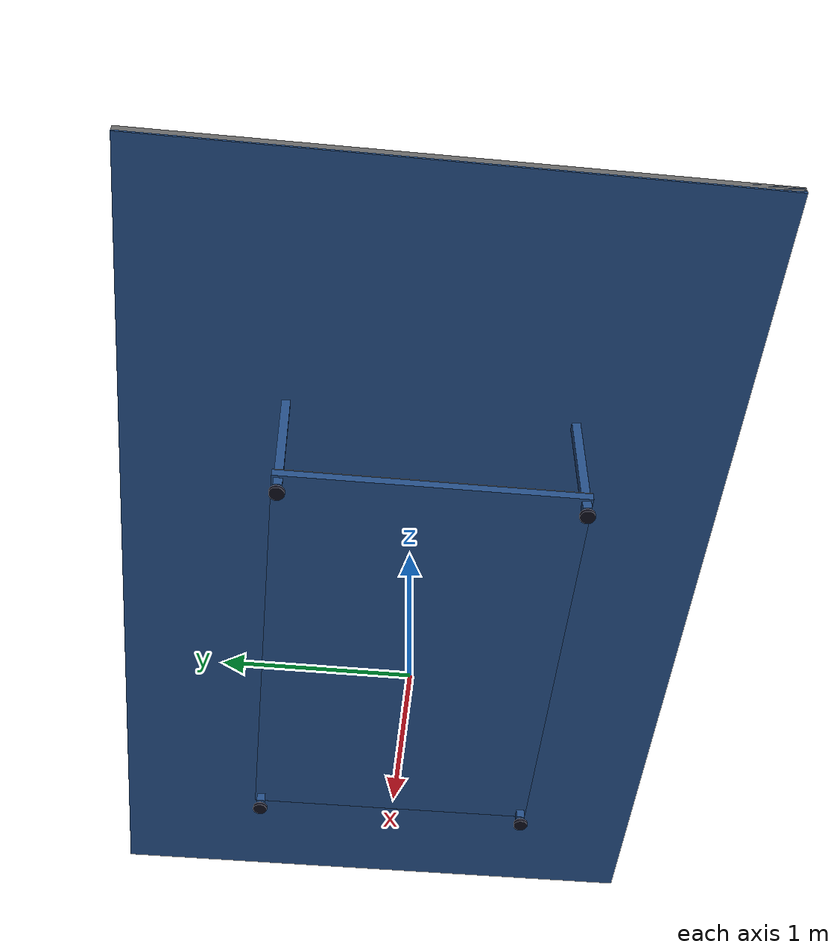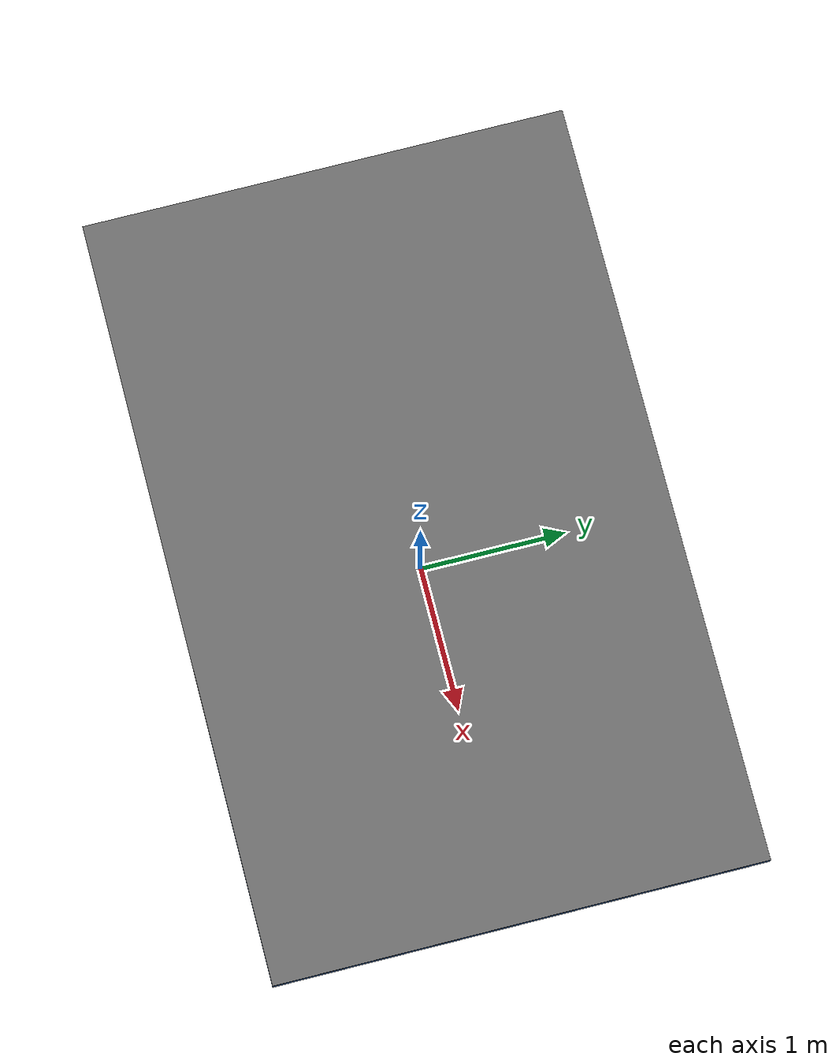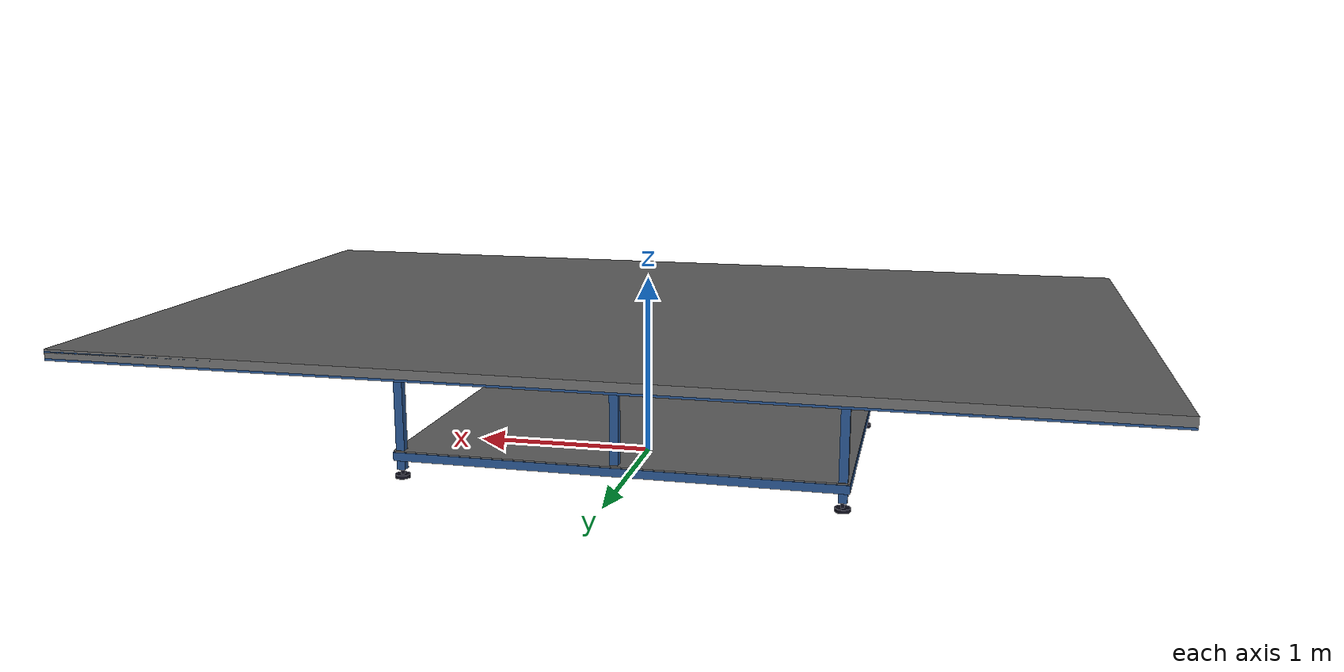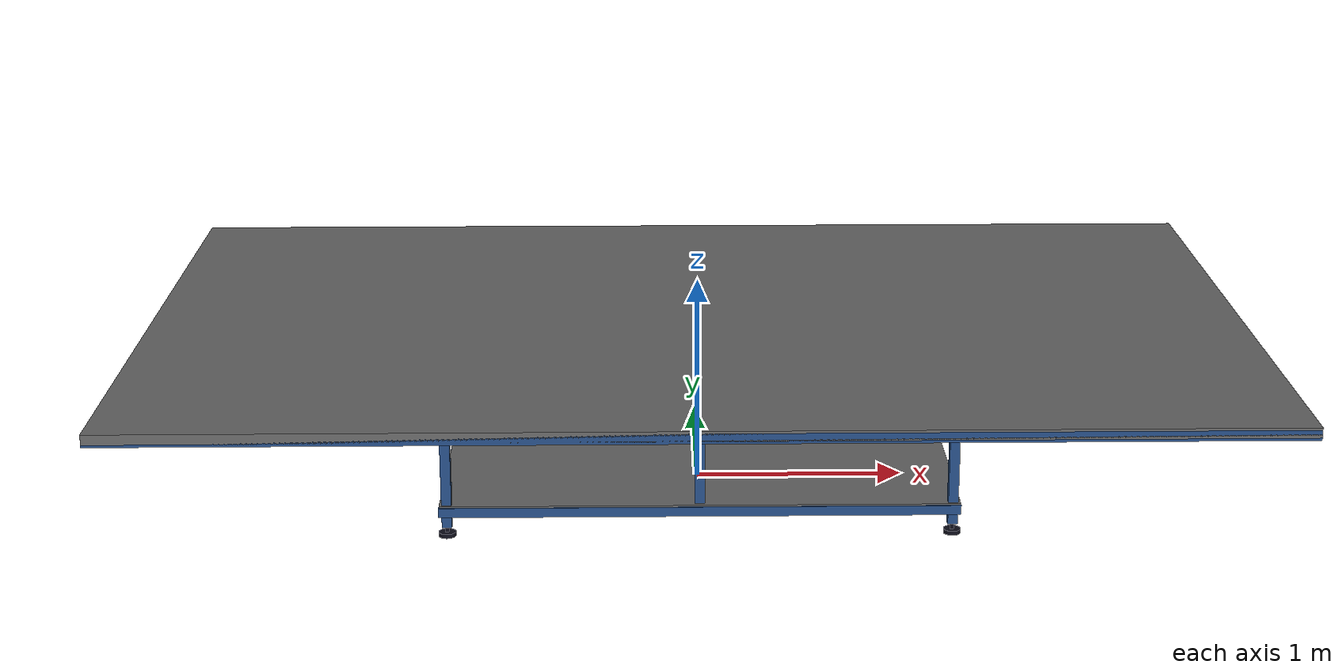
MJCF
<?xml version="1.0" encoding="utf-8"?>
<mujoco model="simple table">
    <compiler angle="radian" />

    <default>
        <default class="vention">
            <geom conaffinity="0" contype="0" group="1"/>
            <default class="vention_collision">
                <geom conaffinity="1" condim="3" contype="0" group="3" margin="0.001" rgba=".4 .5 .6 1"/>
            </default>
        </default>
    </default>

    <asset>
        <material name="vention_black" rgba="0.05 0.05 0.1 1" reflectance="0" shininess=".5"  />
        <material name="vention_white" rgba="0.4 0.4 0.4 1" reflectance="0." shininess=".1"  />
        <material name="vention_blue" rgba=".14 .30 .52 1" reflectance="10" shininess=".1"  />
    </asset>

    <worldbody>
        <body name="vention table" childclass="vention">
            <!-- leg floor pads -->
            <geom type="cylinder" size="0.040 0.010" pos="-1.17 -.766 0.010" material="vention_black"/>
            <geom type="cylinder" size="0.040 0.010" pos="1.17 -.766 0.010" material="vention_black"/>
            <geom type="cylinder" size="0.040 0.010" pos="-1.17 0.766 0.010" material="vention_black"/>
            <geom type="cylinder" size="0.040 0.010" pos="1.17 0.766 0.010" material="vention_black"/>

            <!-- leg pad stems -->
            <geom type="cylinder" size="0.010 0.020" pos="-1.17 -.766 0.030" material="vention_black"/>
            <geom type="cylinder" size="0.010 0.020" pos="1.17 -.766 0.030" material="vention_black"/>
            <geom type="cylinder" size="0.010 0.020" pos="-1.17 0.766 0.030" material="vention_black"/>
            <geom type="cylinder" size="0.010 0.020" pos="1.17 0.766 0.030" material="vention_black"/>

            <!-- legs -->
            <geom type="box" size="0.023 0.023 .387" pos="-1.17 -.766 0.435" material="vention_blue"/>
            <geom type="box" size="0.023 0.023 .387" pos="1.17 -.766 0.435" material="vention_blue"/>
            <geom type="box" size="0.023 0.023 .387" pos="-1.17 0.766 0.435" material="vention_blue"/>
            <geom type="box" size="0.023 0.023 .387" pos="1.17 0.766 0.435" material="vention_blue"/>

            <!-- middle legs -->
            <geom type="box" size="0.023 0.023 .337" pos="0 0.754 0.440" material="vention_blue"/>
            <geom type="box" size="0.023 0.023 .337" pos="0 -0.754 0.440" material="vention_blue"/>

            <!-- top board -->
            <geom type="box" size="2.612 1.640 0.023" pos="0 0 0.801" material="vention_white"/>
            <geom type="box" size="2.612 1.640 0.023" pos="0 0 0.790" material="vention_blue"/>

            <!-- bottom board -->
            <geom type="box" size="1.204 0.798 0.005" pos="0 0 0.150" material="vention_white"/>
            <geom type="box" size="1.206 0.800 0.023" pos="0 0 0.124" material="vention_blue"/>

            <!-- collision -->
            <geom type="box" size="1.206 0.800 0.411" pos="0 0 0.413" class="vention_collision"/>
        </body>
    </worldbody>

</mujoco>
